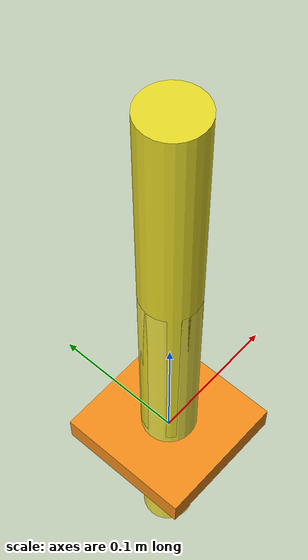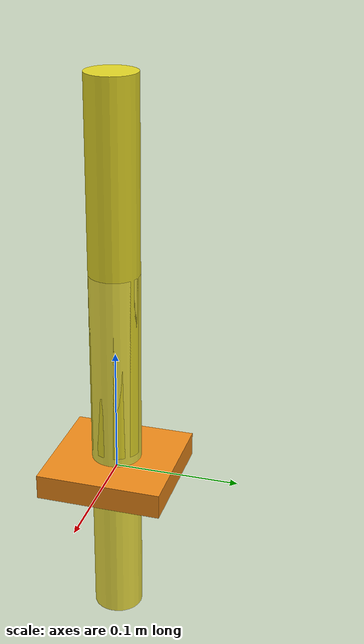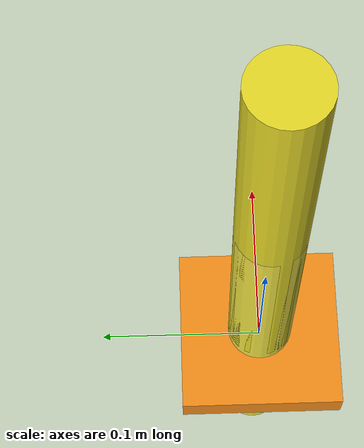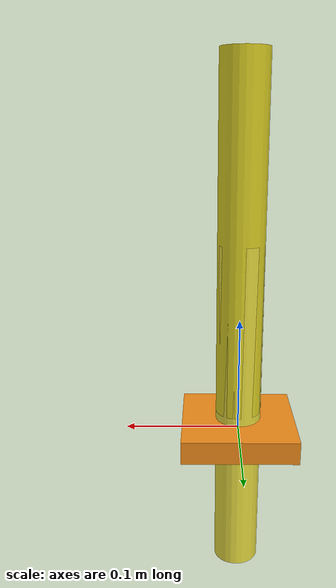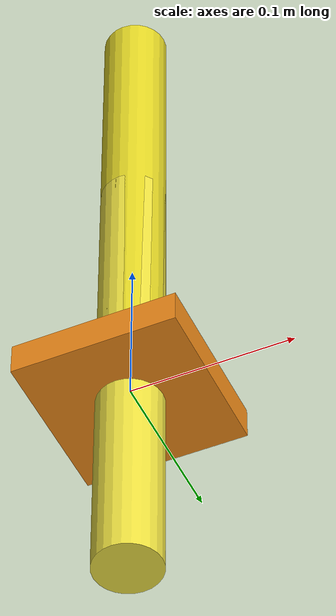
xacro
<?xml version="1.0"?>

<robot xmlns:xacro="http://www.ros.org/wiki/xacro">

    <xacro:property name="arm_length" value="0.1" />
    <xacro:property name="arm_width" value="0.1" />
    <xacro:property name="arm_height" value="0.02" />
    <xacro:property name="arm_mass" value="0.5" />

    <xacro:property name="forearm_mass" value="0.3" />
    <xacro:property name="forearm_length" value="0.3" />
    <xacro:property name="forearm_radius" value="0.02" />

    <xacro:property name="hand_mass" value="0.3" />
    <xacro:property name="hand_length" value="0.3" />
    <xacro:property name="hand_radius" value="0.02" />

    <link name="base_footprint">
    </link>
    <link name="arm_base_link">
        <visual>
            <geometry>
                <box size="${arm_length} ${arm_width} ${arm_height}" />
            </geometry>
            <material name="orange" />
            <origin xyz="0 0 0" rpy="0 0 0" />
        </visual>
        <collision>
            <geometry>
                <box size="${arm_length} ${arm_width} ${arm_height}" />
            </geometry>
        </collision>
        <xacro:box_inertia m="${arm_mass}" l="${arm_length}" w="${arm_width}" h="${arm_height}"
            xyz="0 0 0" rpy="0 0 0" />
    </link>

    <link name="forearm_link">
        <visual>
            <geometry>
                <cylinder length="${forearm_length}" radius="${forearm_radius}" />
            </geometry>
            <material name="yellow" />
            <origin xyz="0 0 .15" rpy="0 0 0" />
        </visual>
        <collision>
            <geometry>
                <cylinder length="${forearm_length}" radius="${forearm_radius}" />
            </geometry>
        </collision>
        <xacro:cylinder_inertia m="${forearm_mass}" r="${forearm_radius}" h="${forearm_length}"
            xyz="0 0 0" rpy="0 0 0" />
    </link>

    <link name="hand_link">
        <visual>
            <geometry>
                <cylinder length="${hand_length}" radius="${hand_radius}" />
                <material name="orange" />
                <origin xyz="0 0 0}" rpy="0 0 0" />
            </geometry>
        </visual>
        <collision>
            <geometry>
                <cylinder length="${hand_length}" radius="${hand_radius}" />
            </geometry>
        </collision>
        <xacro:cylinder_inertia m="${hand_mass}" r="${hand_radius}" h="${hand_length}"
            xyz="0 0 0" rpy="0 0 0" />

    </link>
    <joint name="hand_forearm_joint" type="revolute">
        <parent link="forearm_link" />
        <child link="hand_link" />
        <axis xyz="0 1 0" />
        <limit effort="100.0" lower="0.0" upper="${pi / 2}" velocity="100.0" />
        <dynamics friction="0.05" damping="0.1" />

        <origin xyz="0 0 0" rpy="0 0 0" />
    </joint>

    <joint name="base_joint" type="fixed">
        <parent link="base_footprint" />
        <child link="arm_base_link" />
        <origin xyz="0 0 0" rpy="0 0 0" />
    </joint>

    <joint name="forearm_arm_joint" type="revolute">
        <parent link="arm_base_link" />
        <child link="forearm_link" />
        <axis xyz="0 1 0" />
        <limit effort="100.0" lower="0.0" upper="${pi / 2}" velocity="100.0" />
        <dynamics friction="0.05" damping="0.1" />

        <origin xyz="0 0 .017" rpy="0 0 0" />
    </joint>

</robot>
